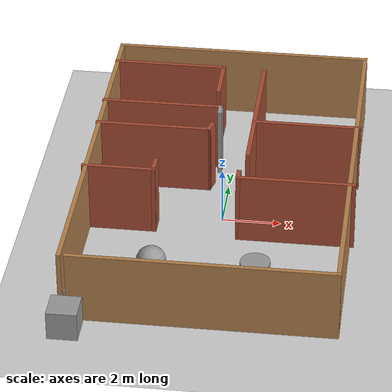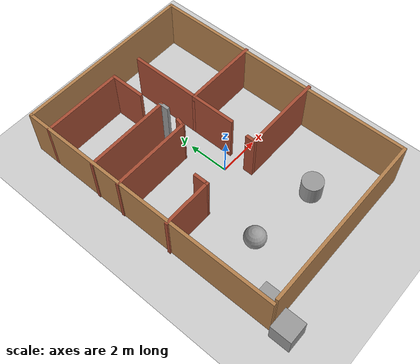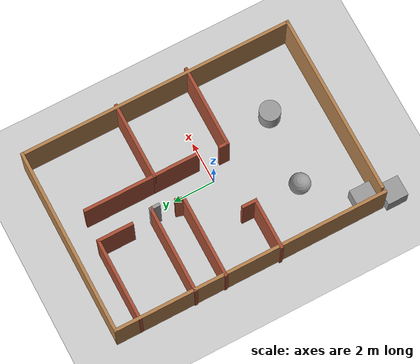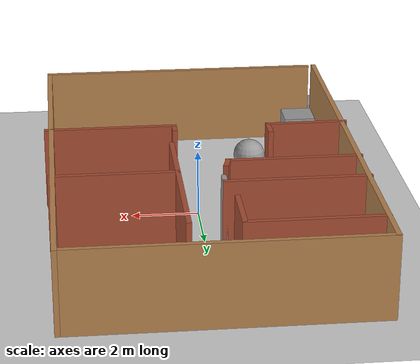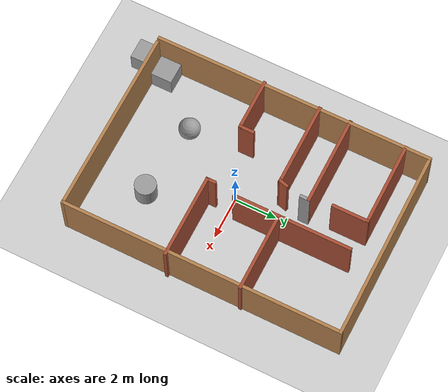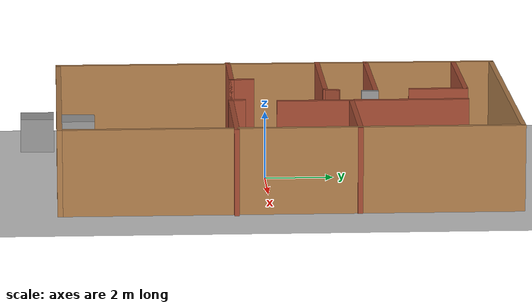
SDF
<sdf version="1.6">
 <world name="default">
  <light name="sun" type="directional">
   <pose>0 0 10 0 -0 0</pose>
   <diffuse>0.8 0.8 0.8 1</diffuse>
   <specular>0.2 0.2 0.2 1</specular>
   <attenuation>
    <range>1000</range>
    <constant>0.9</constant>
    <linear>0.01</linear>
    <quadratic>0.001</quadratic>
   </attenuation>
   <direction>-0.5 0.1 -0.9</direction>
  </light>
  <model name="ground_plane">
   <static>1</static>
   <link name="link">
    <collision name="collision">
     <geometry><plane><normal>0 0 1</normal><size>100 100</size></plane></geometry>
     <surface><friction><ode><mu>100</mu><mu2>50</mu2></ode></friction></surface>
    </collision>
    <visual name="visual">
     <cast_shadows>0</cast_shadows>
     <geometry><plane><normal>0 0 1</normal><size>100 100</size></plane></geometry>
     <material>
      <script><uri>file://media/materials/scripts/gazebo.material</uri><name>Gazebo/Grey</name></script>
     </material>
    </visual>
   </link>
  </model>
  <gravity>0 0 -9.8</gravity>
  <magnetic_field>6e-06 2.3e-05 -4.2e-05</magnetic_field>
  <atmosphere type="adiabatic"/>
  <physics name="default_physics" default="0" type="ode">
   <max_step_size>0.001</max_step_size>
   <real_time_factor>1</real_time_factor>
   <real_time_update_rate>1000</real_time_update_rate>
  </physics>
  <scene><ambient>0.4 0.4 0.4 1</ambient><background>0.7 0.7 0.7 1</background><shadows>1</shadows></scene>
  <spherical_coordinates>
   <surface_model>EARTH_WGS84</surface_model>
   <latitude_deg>0</latitude_deg>
   <longitude_deg>0</longitude_deg>
   <elevation>0</elevation>
   <heading_deg>0</heading_deg>
  </spherical_coordinates>
  <model name="test_world2">
   <pose>-0.041332 0.545081 0 0 -0 0</pose>
   <link name="Wall_0">
    <collision name="Wall_0_Collision">
     <geometry><box><size>13.25 0.15 2.5</size></box></geometry>
     <pose>0 0 1.25 0 -0 0</pose>
    </collision>
    <visual name="Wall_0_Visual">
     <pose>0 0 1.25 0 -0 0</pose>
     <geometry><box><size>13.25 0.15 2.5</size></box></geometry>
     <material>
      <script><uri>file://media/materials/scripts/gazebo.material</uri><name>Gazebo/Wood</name></script>
      <ambient>1 1 1 1</ambient>
     </material>
     <meta><layer>0</layer></meta>
    </visual>
    <pose>-4.45409 -0 0 0 -0 1.5708</pose>
   </link>
   <link name="Wall_1">
    <collision name="Wall_1_Collision">
     <geometry><box><size>9 0.15 2.5</size></box></geometry>
     <pose>0 0 1.25 0 -0 0</pose>
    </collision>
    <visual name="Wall_1_Visual">
     <pose>0 0 1.25 0 -0 0</pose>
     <geometry><box><size>9 0.15 2.5</size></box></geometry>
     <material>
      <script><uri>file://media/materials/scripts/gazebo.material</uri><name>Gazebo/Wood</name></script>
      <ambient>1 1 1 1</ambient>
     </material>
     <meta><layer>0</layer></meta>
    </visual>
    <pose>-0.029092 6.55 0 0 -0 0</pose>
   </link>
   <link name="Wall_11">
    <collision name="Wall_11_Collision">
     <geometry><box><size>4.25 0.15 2.5</size></box></geometry>
     <pose>0 0 1.25 0 -0 0</pose>
    </collision>
    <visual name="Wall_11_Visual">
     <pose>0 0 1.25 0 -0 0</pose>
     <geometry><box><size>4.25 0.15 2.5</size></box></geometry>
     <material>
      <script><uri>file://media/materials/scripts/gazebo.material</uri><name>Gazebo/Bricks</name></script>
      <ambient>1 1 1 1</ambient>
     </material>
     <meta><layer>0</layer></meta>
    </visual>
    <pose>-2.44495 2.74097 0 0 -0 0</pose>
   </link>
   <link name="Wall_12">
    <collision name="Wall_12_Collision">
     <geometry><box><size>0.5 0.15 2.5</size></box></geometry>
     <pose>0 0 1.25 0 -0 0</pose>
    </collision>
    <visual name="Wall_12_Visual">
     <pose>0 0 1.25 0 -0 0</pose>
     <geometry><box><size>0.5 0.15 2.5</size></box></geometry>
     <material>
      <script><uri>file://media/materials/scripts/gazebo.material</uri><name>Gazebo/Grey</name></script>
      <ambient>1 1 1 1</ambient>
     </material>
     <meta><layer>0</layer></meta>
    </visual>
    <pose>-0.394946 2.56597 0 0 -0 -1.5708</pose>
   </link>
   <link name="Wall_14">
    <collision name="Wall_14_Collision">
     <geometry><box><size>4 0.15 2.5</size></box></geometry>
     <pose>0 0 1.25 0 -0 0</pose>
    </collision>
    <visual name="Wall_14_Visual">
     <pose>0 0 1.25 0 -0 0</pose>
     <geometry><box><size>4 0.15 2.5</size></box></geometry>
     <material>
      <script><uri>file://media/materials/scripts/gazebo.material</uri><name>Gazebo/Bricks</name></script>
      <ambient>1 1 1 1</ambient>
     </material>
     <meta><layer>0</layer></meta>
    </visual>
    <pose>-2.53497 5.39946 0 0 -0 0</pose>
   </link>
   <link name="Wall_15">
    <collision name="Wall_15_Collision">
     <geometry><box><size>1.75 0.15 2.5</size></box></geometry>
     <pose>0 0 1.25 0 -0 0</pose>
    </collision>
    <visual name="Wall_15_Visual">
     <pose>0 0 1.25 0 -0 0</pose>
     <geometry><box><size>1.75 0.15 2.5</size></box></geometry>
     <material>
      <script><uri>file://media/materials/scripts/gazebo.material</uri><name>Gazebo/Bricks</name></script>
      <ambient>1 1 1 1</ambient>
     </material>
     <meta><layer>0</layer></meta>
    </visual>
    <pose>-0.609966 4.59946 0 0 -0 -1.5708</pose>
   </link>
   <link name="Wall_17">
    <collision name="Wall_17_Collision">
     <geometry><box><size>4 0.15 2.5</size></box></geometry>
     <pose>0 0 1.25 0 -0 0</pose>
    </collision>
    <visual name="Wall_17_Visual">
     <pose>0 0 1.25 0 -0 0</pose>
     <geometry><box><size>4 0.15 2.5</size></box></geometry>
     <material>
      <script><uri>file://media/materials/scripts/gazebo.material</uri><name>Gazebo/Bricks</name></script>
      <ambient>1 1 1 1</ambient>
     </material>
     <meta><layer>0</layer></meta>
    </visual>
    <pose>2.60493 -1.56158 0 0 -0 3.14159</pose>
   </link>
   <link name="Wall_18">
    <collision name="Wall_18_Collision">
     <geometry><box><size>0.5 0.15 2.5</size></box></geometry>
     <pose>0 0 1.25 0 -0 0</pose>
    </collision>
    <visual name="Wall_18_Visual">
     <pose>0 0 1.25 0 -0 0</pose>
     <geometry><box><size>0.5 0.15 2.5</size></box></geometry>
     <material>
      <script><uri>file://media/materials/scripts/gazebo.material</uri><name>Gazebo/Bricks</name></script>
      <ambient>1 1 1 1</ambient>
     </material>
     <meta><layer>0</layer></meta>
    </visual>
    <pose>0.679926 -1.38658 0 0 -0 1.5708</pose>
   </link>
   <link name="Wall_2">
    <collision name="Wall_2_Collision">
     <geometry><box><size>13.25 0.15 2.5</size></box></geometry>
     <pose>0 0 1.25 0 -0 0</pose>
    </collision>
    <visual name="Wall_2_Visual">
     <pose>0 0 1.25 0 -0 0</pose>
     <geometry><box><size>13.25 0.15 2.5</size></box></geometry>
     <material>
      <script><uri>file://media/materials/scripts/gazebo.material</uri><name>Gazebo/Wood</name></script>
      <ambient>1 1 1 1</ambient>
     </material>
     <meta><layer>0</layer></meta>
    </visual>
    <pose>4.39591 -0 0 0 -0 -1.5708</pose>
   </link>
   <link name="Wall_20">
    <collision name="Wall_20_Collision">
     <geometry><box><size>3.75 0.15 2.5</size></box></geometry>
     <pose>0 0 1.25 0 -0 0</pose>
    </collision>
    <visual name="Wall_20_Visual">
     <pose>0 0 1.25 0 -0 0</pose>
     <geometry><box><size>3.75 0.15 2.5</size></box></geometry>
     <material>
      <script><uri>file://media/materials/scripts/gazebo.material</uri><name>Gazebo/Bricks</name></script>
      <ambient>1 1 1 1</ambient>
     </material>
     <meta><layer>0</layer></meta>
    </visual>
    <pose>2.65997 1.93643 0 0 -0 3.14159</pose>
   </link>
   <link name="Wall_21">
    <collision name="Wall_21_Collision">
     <geometry><box><size>2.25 0.15 2.5</size></box></geometry>
     <pose>0 0 1.25 0 -0 0</pose>
    </collision>
    <visual name="Wall_21_Visual">
     <pose>0 0 1.25 0 -0 0</pose>
     <geometry><box><size>2.25 0.15 2.5</size></box></geometry>
     <material>
      <script><uri>file://media/materials/scripts/gazebo.material</uri><name>Gazebo/Bricks</name></script>
      <ambient>1 1 1 1</ambient>
     </material>
     <meta><layer>0</layer></meta>
    </visual>
    <pose>0.859966 0.886429 0 0 -0 -1.5708</pose>
   </link>
   <link name="Wall_23">
    <collision name="Wall_23_Collision">
     <geometry><box><size>3.5 0.15 2.5</size></box></geometry>
     <pose>0 0 1.25 0 -0 0</pose>
    </collision>
    <visual name="Wall_23_Visual">
     <pose>0 0 1.25 0 -0 0</pose>
     <geometry><box><size>3.5 0.15 2.5</size></box></geometry>
     <material>
      <script><uri>file://media/materials/scripts/gazebo.material</uri><name>Gazebo/Bricks</name></script>
      <ambient>1 1 1 1</ambient>
     </material>
     <meta><layer>0</layer></meta>
    </visual>
    <pose>0.859966 3.61143 0 0 -0 1.5708</pose>
   </link>
   <link name="Wall_3">
    <collision name="Wall_3_Collision">
     <geometry><box><size>8.75 0.15 2.5</size></box></geometry>
     <pose>0 0 1.25 0 -0 0</pose>
    </collision>
    <visual name="Wall_3_Visual">
     <pose>0 0 1.25 0 -0 0</pose>
     <geometry><box><size>8.75 0.15 2.5</size></box></geometry>
     <material>
      <script><uri>file://media/materials/scripts/gazebo.material</uri><name>Gazebo/Wood</name></script>
      <ambient>1 1 1 1</ambient>
     </material>
     <meta><layer>0</layer></meta>
    </visual>
    <pose>0.095908 -6.55 0 0 -0 3.14159</pose>
   </link>
   <link name="Wall_5">
    <collision name="Wall_5_Collision">
     <geometry><box><size>2.5 0.15 2.5</size></box></geometry>
     <pose>0 0 1.25 0 -0 0</pose>
    </collision>
    <visual name="Wall_5_Visual">
     <pose>0 0 1.25 0 -0 0</pose>
     <geometry><box><size>2.5 0.15 2.5</size></box></geometry>
     <material>
      <script><uri>file://media/materials/scripts/gazebo.material</uri><name>Gazebo/Bricks</name></script>
      <ambient>1 1 1 1</ambient>
     </material>
     <meta><layer>0</layer></meta>
    </visual>
    <pose>-3.35493 -1.42166 0 0 -0 0</pose>
   </link>
   <link name="Wall_6">
    <collision name="Wall_6_Collision">
     <geometry><box><size>0.75 0.15 2.5</size></box></geometry>
     <pose>0 0 1.25 0 -0 0</pose>
    </collision>
    <visual name="Wall_6_Visual">
     <pose>0 0 1.25 0 -0 0</pose>
     <geometry><box><size>0.75 0.15 2.5</size></box></geometry>
     <material>
      <script><uri>file://media/materials/scripts/gazebo.material</uri><name>Gazebo/Bricks</name></script>
      <ambient>1 1 1 1</ambient>
     </material>
     <meta><layer>0</layer></meta>
    </visual>
    <pose>-2.17993 -1.12166 0 0 -0 1.5708</pose>
   </link>
   <link name="Wall_8">
    <collision name="Wall_8_Collision">
     <geometry><box><size>4 0.15 2.5</size></box></geometry>
     <pose>0 0 1.25 0 -0 0</pose>
    </collision>
    <visual name="Wall_8_Visual">
     <pose>0 0 1.25 0 -0 0</pose>
     <geometry><box><size>4 0.15 2.5</size></box></geometry>
     <material>
      <script><uri>file://media/materials/scripts/gazebo.material</uri><name>Gazebo/Bricks</name></script>
      <ambient>1 1 1 1</ambient>
     </material>
     <meta><layer>0</layer></meta>
    </visual>
    <pose>-2.56995 1.27181 0 0 -0 0</pose>
   </link>
   <link name="Wall_9">
    <collision name="Wall_9_Collision">
     <geometry><box><size>0.5 0.15 2.5</size></box></geometry>
     <pose>0 0 1.25 0 -0 0</pose>
    </collision>
    <visual name="Wall_9_Visual">
     <pose>0 0 1.25 0 -0 0</pose>
     <geometry><box><size>0.5 0.15 2.5</size></box></geometry>
     <material>
      <script><uri>file://media/materials/scripts/gazebo.material</uri><name>Gazebo/Bricks</name></script>
      <ambient>1 1 1 1</ambient>
     </material>
     <meta><layer>0</layer></meta>
    </visual>
    <pose>-0.599653 1.44084 0 0 -0 1.309</pose>
   </link>
   <static>1</static>
  </model>
  <model name="unit_box">
   <pose>-4.26907 -6.65651 0.499995 -1e-05 -0 -0</pose>
   <link name="link">
    <inertial>
     <mass>1</mass>
     <inertia>
      <ixx>0.166667</ixx>
      <ixy>0</ixy>
      <ixz>0</ixz>
      <iyy>0.166667</iyy>
      <iyz>0</iyz>
      <izz>0.166667</izz>
     </inertia>
    </inertial>
    <collision name="collision"><geometry><box><size>1 1 1</size></box></geometry></collision>
    <visual name="visual">
     <geometry><box><size>1 1 1</size></box></geometry>
     <material>
      <script><name>Gazebo/Grey</name><uri>file://media/materials/scripts/gazebo.material</uri></script>
     </material>
    </visual>
   </link>
  </model>
  <model name="unit_box_0">
   <pose>-3.90777 -5.4299 0.499995 -1e-05 -0 5e-06</pose>
   <link name="link">
    <inertial>
     <mass>1</mass>
     <inertia>
      <ixx>0.166667</ixx>
      <ixy>0</ixy>
      <ixz>0</ixz>
      <iyy>0.166667</iyy>
      <iyz>0</iyz>
      <izz>0.166667</izz>
     </inertia>
    </inertial>
    <collision name="collision"><geometry><box><size>1 1 1</size></box></geometry></collision>
    <visual name="visual">
     <geometry><box><size>1 1 1</size></box></geometry>
     <material>
      <script><name>Gazebo/Grey</name><uri>file://media/materials/scripts/gazebo.material</uri></script>
     </material>
    </visual>
   </link>
  </model>
  <model name="unit_cylinder">
   <pose>1.49929 -3.62564 0.499993 -3e-06 -4e-06 -0</pose>
   <link name="link">
    <inertial>
     <mass>1</mass>
     <inertia><ixx>0.145833</ixx><ixy>0</ixy><ixz>0</ixz><iyy>0.145833</iyy><iyz>0</iyz><izz>0.125</izz></inertia>
    </inertial>
    <collision name="collision">
     <geometry><cylinder><radius>0.5</radius><length>1</length></cylinder></geometry>
    </collision>
    <visual name="visual">
     <geometry><cylinder><radius>0.5</radius><length>1</length></cylinder></geometry>
     <material>
      <script><name>Gazebo/Grey</name><uri>file://media/materials/scripts/gazebo.material</uri></script>
     </material>
    </visual>
   </link>
  </model>
  <model name="unit_sphere">
   <pose>-1.97816 -3.2706 0.5 0 -0 0</pose>
   <link name="link">
    <inertial>
     <mass>1</mass>
     <inertia><ixx>0.1</ixx><ixy>0</ixy><ixz>0</ixz><iyy>0.1</iyy><iyz>0</iyz><izz>0.1</izz></inertia>
    </inertial>
    <collision name="collision"><geometry><sphere><radius>0.5</radius></sphere></geometry></collision>
    <visual name="visual">
     <geometry><sphere><radius>0.5</radius></sphere></geometry>
     <material>
      <script><name>Gazebo/Grey</name><uri>file://media/materials/scripts/gazebo.material</uri></script>
     </material>
    </visual>
   </link>
  </model>
 </world>
</sdf>
